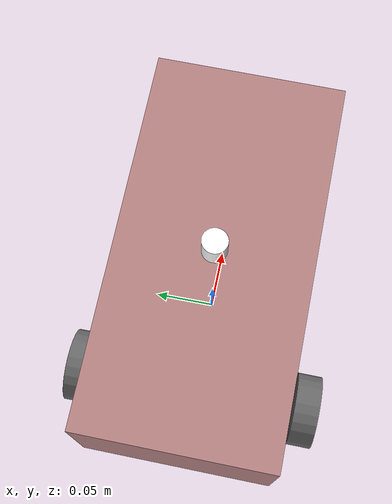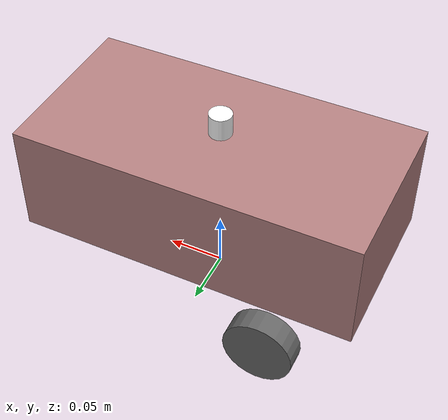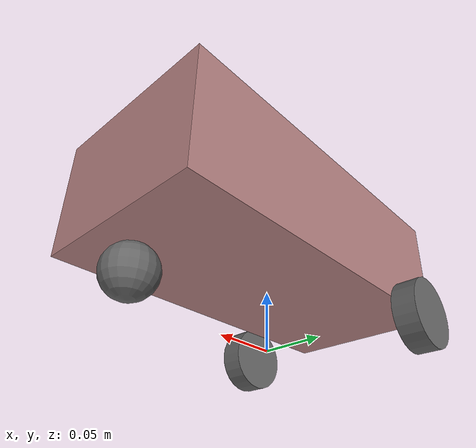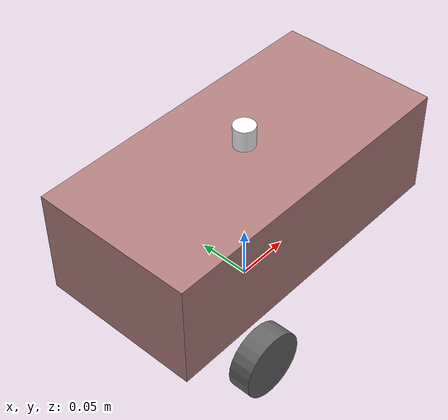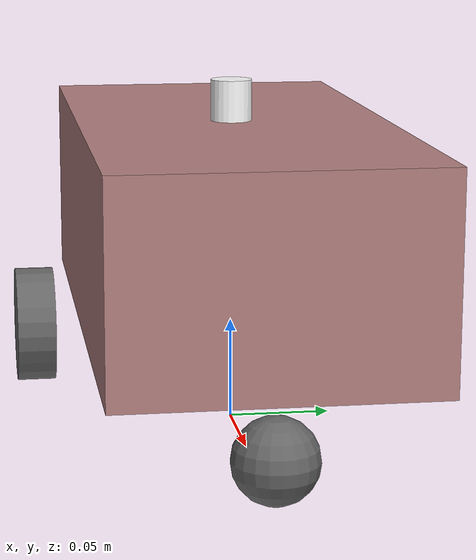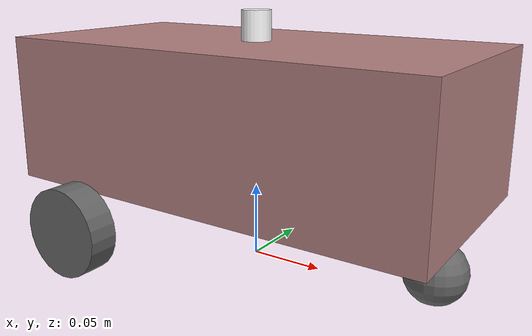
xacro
<?xml version="1.0"?>
<robot name="tortoisebot" xmlns:xacro="http://www.ros.org/wiki/xacro">

    <!-- ============ Reusable properties ============ -->
    <xacro:property name="base_length" value="0.3"/>
    <xacro:property name="base_width" value="0.15"/>
    <xacro:property name="base_height" value="0.1"/>
    <xacro:property name="base_mass" value="1.0"/>

    <xacro:property name="wheel_radius" value="0.03"/>
    <xacro:property name="wheel_thickness" value="0.02"/>
    <xacro:property name="wheel_mass" value="0.1"/>
    <xacro:property name="wheel_separation" value="0.188"/>
    <xacro:property name="wheel_x_offset" value="-0.0825"/>

    <xacro:property name="caster_radius" value="0.02"/>
    <xacro:property name="caster_mass" value="0.05"/>
    <xacro:property name="caster_x_offset" value="0.13"/>
    <xacro:property name="base_z_offset" value="0.1"/>

    <!-- Lidar: cylinder mounted flush on the chassis roof, centered -->
    <xacro:property name="lidar_radius" value="0.01"/>
    <xacro:property name="lidar_length" value="0.02"/>
    <xacro:property name="lidar_mass" value="0.05"/>
    <xacro:property name="lidar_z_offset" value="${base_height/2 + lidar_length/2}"/>

    <!-- ============ base_footprint ============ -->
    <link name="base_footprint"/>

    <!-- ============ base_link ============ -->
    <link name="base_link">
        <visual>
            <geometry>
                <box size="${base_length} ${base_width} ${base_height}"/>
            </geometry>
            <material name="Pink">
                <color rgba="0.7 0.5 0.5 1"/>
            </material>
        </visual>
        <collision>
            <geometry>
                <box size="${base_length} ${base_width} ${base_height}"/>
            </geometry>
        </collision>
        <inertial>
            <mass value="${base_mass}"/>
            <inertia
                ixx="${(base_mass/12.0) * (base_width*base_width + base_height*base_height)}"
                ixy="0.0" ixz="0.0"
                iyy="${(base_mass/12.0) * (base_length*base_length + base_height*base_height)}"
                iyz="0.0"
                izz="${(base_mass/12.0) * (base_length*base_length + base_width*base_width)}"/>
        </inertial>
    </link>

    <joint name="base_joint" type="fixed">
        <parent link="base_footprint"/>
        <child link="base_link"/>
        <origin xyz="0 0 ${base_z_offset}" rpy="0 0 0"/>
    </joint>

    <!-- ============ Right wheel ============ -->
    <link name="right_wheel">
        <visual>
            <geometry>
                <cylinder length="${wheel_thickness}" radius="${wheel_radius}"/>
            </geometry>
            <material name="Silver">
                <color rgba="0.4 0.4 0.4 1"/>
            </material>
        </visual>
        <collision>
            <geometry>
                <cylinder length="${wheel_thickness}" radius="${wheel_radius}"/>
            </geometry>
        </collision>
        <inertial>
            <mass value="${wheel_mass}"/>
            <inertia
                ixx="${(wheel_mass/12.0) * (3*wheel_radius*wheel_radius + wheel_thickness*wheel_thickness)}"
                ixy="0.0" ixz="0.0"
                iyy="${(wheel_mass/12.0) * (3*wheel_radius*wheel_radius + wheel_thickness*wheel_thickness)}"
                iyz="0.0"
                izz="${0.5 * wheel_mass * wheel_radius*wheel_radius}"/>
        </inertial>
    </link>

    <joint name="right_wheel_joint" type="continuous">
        <axis xyz="0 0 1"/>
        <parent link="base_link"/>
        <child link="right_wheel"/>
        <origin rpy="-1.5708 0 0" xyz="${wheel_x_offset} ${-wheel_separation/2} ${wheel_radius - base_z_offset}"/>
    </joint>

    <!-- ============ Left wheel ============ -->
    <link name="left_wheel">
        <visual>
            <geometry>
                <cylinder length="${wheel_thickness}" radius="${wheel_radius}"/>
            </geometry>
            <material name="Silver">
                <color rgba="0.4 0.4 0.4 1"/>
            </material>
        </visual>
        <collision>
            <geometry>
                <cylinder length="${wheel_thickness}" radius="${wheel_radius}"/>
            </geometry>
        </collision>
        <inertial>
            <mass value="${wheel_mass}"/>
            <inertia
                ixx="${(wheel_mass/12.0) * (3*wheel_radius*wheel_radius + wheel_thickness*wheel_thickness)}"
                ixy="0.0" ixz="0.0"
                iyy="${(wheel_mass/12.0) * (3*wheel_radius*wheel_radius + wheel_thickness*wheel_thickness)}"
                iyz="0.0"
                izz="${0.5 * wheel_mass * wheel_radius*wheel_radius}"/>
        </inertial>
    </link>

    <joint name="left_wheel_joint" type="continuous">
        <axis xyz="0 0 1"/>
        <parent link="base_link"/>
        <child link="left_wheel"/>
        <origin rpy="-1.5708 0 0" xyz="${wheel_x_offset} ${wheel_separation/2} ${wheel_radius - base_z_offset}"/>
    </joint>

    <!-- ============ Caster wheel (passive, front-mounted) ============ -->
    <link name="caster_wheel">
        <visual>
            <geometry>
                <sphere radius="${caster_radius}"/>
            </geometry>
            <material name="Silver">
                <color rgba="0.4 0.4 0.4 1"/>
            </material>
        </visual>
        <collision>
            <geometry>
                <sphere radius="${caster_radius}"/>
            </geometry>
        </collision>
        <inertial>
            <mass value="${caster_mass}"/>
            <inertia
                ixx="${0.4 * caster_mass * caster_radius*caster_radius}"
                ixy="0.0" ixz="0.0"
                iyy="${0.4 * caster_mass * caster_radius*caster_radius}"
                iyz="0.0"
                izz="${0.4 * caster_mass * caster_radius*caster_radius}"/>
        </inertial>
    </link>

    <joint name="caster_wheel_joint" type="fixed">
        <parent link="base_link"/>
        <child link="caster_wheel"/>
        <origin xyz="${caster_x_offset} 0 ${caster_radius - base_z_offset}" rpy="0 0 0"/>
    </joint>

    <!-- ============ Lidar ============ -->
    <link name="lidar_link">
        <visual>
            <geometry>
                <cylinder radius="${lidar_radius}" length="${lidar_length}"/>
            </geometry>
            <material name="White">
                <color rgba="1 1 1 1"/>
            </material>
        </visual>
        <collision>
            <geometry>
                <cylinder radius="${lidar_radius}" length="${lidar_length}"/>
            </geometry>
        </collision>
        <inertial>
            <mass value="${lidar_mass}"/>
            <inertia
                ixx="${(lidar_mass/12.0) * (3*lidar_radius*lidar_radius + lidar_length*lidar_length)}"
                ixy="0.0" ixz="0.0"
                iyy="${(lidar_mass/12.0) * (3*lidar_radius*lidar_radius + lidar_length*lidar_length)}"
                iyz="0.0"
                izz="${0.5 * lidar_mass * lidar_radius*lidar_radius}"/>
        </inertial>
    </link>

    <joint name="lidar_joint" type="fixed">
        <parent link="base_link"/>
        <child link="lidar_link"/>
        <origin xyz="0 0 ${lidar_z_offset}" rpy="0 0 0"/>
    </joint>

    <!-- ============ Gazebo friction ============ -->
    <gazebo reference="left_wheel">
        <mu1>1.0</mu1>
        <mu2>1.0</mu2>
    </gazebo>
    <gazebo reference="right_wheel">
        <mu1>1.0</mu1>
        <mu2>1.0</mu2>
    </gazebo>
    <gazebo reference="caster_wheel">
        <mu1>0.001</mu1>
        <mu2>0.001</mu2>
    </gazebo>

    <!-- ============ Gazebo plugin: joint state publisher ============ -->
    <gazebo>
        <plugin name="tortoisebot_joint_state" filename="libgazebo_ros_joint_state_publisher.so">
            <ros>
                <remapping>~/out:=joint_states</remapping>
            </ros>
            <update_rate>50</update_rate>
            <joint_name>left_wheel_joint</joint_name>
            <joint_name>right_wheel_joint</joint_name>
        </plugin>
    </gazebo>

    <!-- ============ Gazebo plugin: differential drive ============ -->
    <gazebo>
        <plugin name="diff_drive" filename="libgazebo_ros_diff_drive.so">
            <left_joint>left_wheel_joint</left_joint>
            <right_joint>right_wheel_joint</right_joint>
            <wheel_separation>${wheel_separation}</wheel_separation>
            <wheel_diameter>${wheel_radius * 2}</wheel_diameter>
            <update_rate>50</update_rate>
            <publish_odom>true</publish_odom>
            <publish_odom_tf>true</publish_odom_tf>
            <odometry_frame>odom</odometry_frame>
            <robot_base_frame>base_footprint</robot_base_frame>
            <publish_wheel_tf>false</publish_wheel_tf>
            <publish_wheel_joint_state>false</publish_wheel_joint_state>
            <max_wheel_acceleration>1.0</max_wheel_acceleration>
            <command_topic>cmd_vel</command_topic>
        </plugin>
    </gazebo>

    <!-- ============ Gazebo plugin: LIDAR (ray sensor) ============ -->
    <gazebo reference="lidar_link">
        <sensor type="ray" name="lidar_sensor">
            <pose>0 0 0 0 0 0</pose>
            <visualize>true</visualize>
            <update_rate>10</update_rate>
            <ray>
                <scan>
                    <horizontal>
                        <samples>360</samples>
                        <resolution>1</resolution>
                        <min_angle>-3.14159</min_angle>
                        <max_angle>3.14159</max_angle>
                    </horizontal>
                </scan>
                <range>
                    <min>0.12</min>
                    <max>3.5</max>
                    <resolution>0.01</resolution>
                </range>
                <noise>
                    <type>gaussian</type>
                    <mean>0.0</mean>
                    <stddev>0.01</stddev>
                </noise>
            </ray>
            <plugin name="lidar_plugin" filename="libgazebo_ros_ray_sensor.so">
                <ros>
                    <remapping>~/out:=scan</remapping>
                </ros>
                <output_type>sensor_msgs/LaserScan</output_type>
                <frame_name>lidar_link</frame_name>
            </plugin>
        </sensor>
    </gazebo>

    <!-- Gazebo Classic ignores the rgba colors set in visual/material above;
         it only uses these script-based material references for its own renderer. -->
    <gazebo reference="base_link">
        <material>Gazebo/Purple</material>
    </gazebo>
    <gazebo reference="caster_wheel">
        <material>Gazebo/Grey</material>
    </gazebo>
    <gazebo reference="right_wheel">
        <material>Gazebo/Grey</material>
    </gazebo>
    <gazebo reference="left_wheel">
        <material>Gazebo/Grey</material>
    </gazebo>
    <gazebo reference="lidar_link">
        <material>Gazebo/White</material>
    </gazebo>

</robot>
